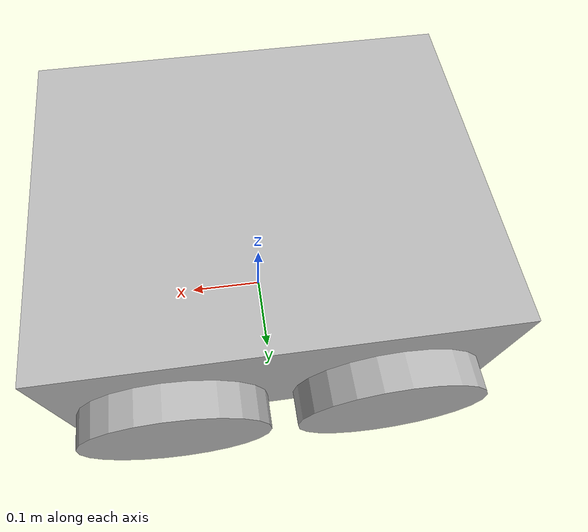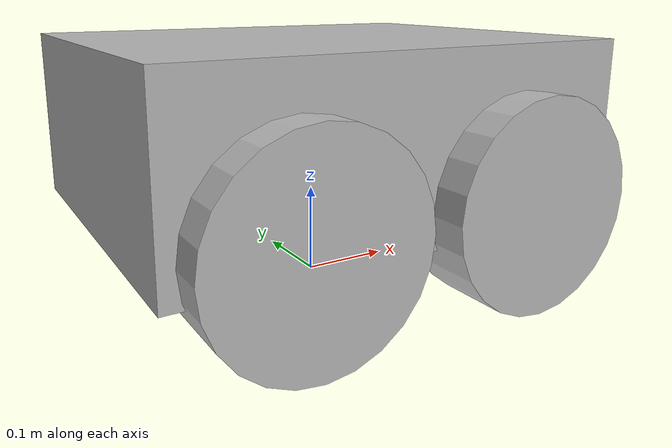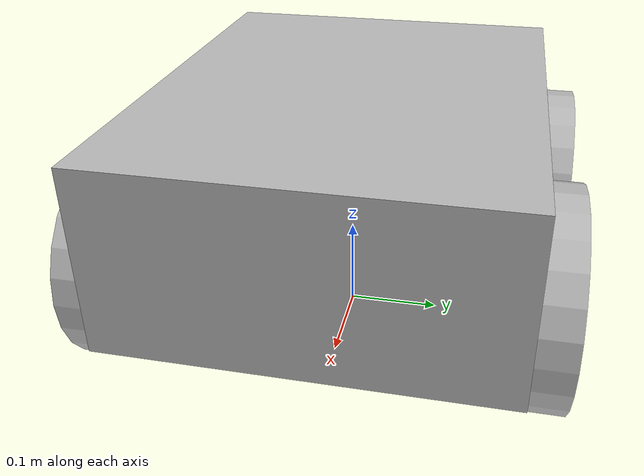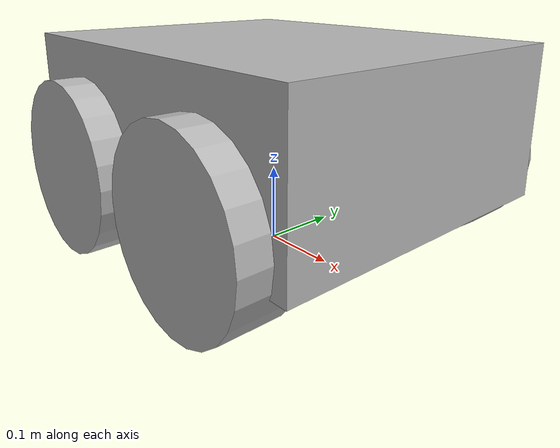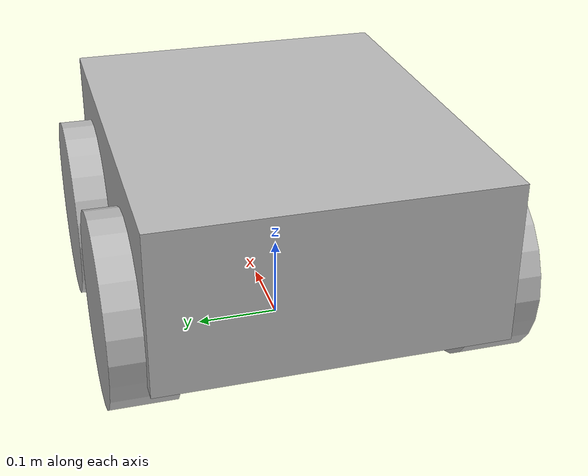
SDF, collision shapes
<?xml version='1.0'?>
<sdf version="1.4">
  <model name="pioneer3at">
    <pose>0 0 0.180 0 0 0</pose>
    <static>false</static>

    <link name="chassis">
      <inertial>
        <mass>14.0</mass>
        <inertia>
          <ixx>0.3338</ixx>
          <ixy>0.0</ixy>
          <ixz>0.0</ixz>
          <iyy>0.4783</iyy>
          <iyz>0.0</iyz>
          <izz>0.3338</izz>
        </inertia>
      </inertial>
      <collision name="collision">
        <geometry>
          <box>
            <size>0.501 0.400 0.19</size>
          </box>
        </geometry>
      </collision>
      <visual name="visual">
        <geometry>
          <mesh>
            <uri>model://pioneer3at/meshes/chassis.dae</uri>
          </mesh>
        </geometry>
      </visual>
    </link>

    <link name="right_front_wheel">
      <pose>0.125 -0.201 -0.06 1.5707 0 0</pose>
      <collision name="collision">
        <geometry>
          <cylinder>
            <radius>0.110</radius>
            <length>0.075</length>
          </cylinder>
        </geometry>
        <surface>
          <friction>
            <ode>
              <mu>1</mu>
              <mu2>1</mu2>
              <slip1>0.5</slip1>
              <slip2>0</slip2>
            </ode>
          </friction>
        </surface>
      </collision>
      <visual name="visual">
        <geometry>
          <mesh>
            <uri>model://pioneer3at/meshes/wheel.dae</uri>
          </mesh>
        </geometry>
      </visual>
    </link>

    <link name="left_front_wheel">
      <pose>0.125 0.201 -0.06 1.5707 0 0</pose>
      <collision name="collision">
        <geometry>
          <cylinder>
            <radius>0.110</radius>
            <length>0.075</length>
          </cylinder>
        </geometry>
        <surface>
          <friction>
            <ode>
              <mu>1</mu>
              <mu2>1</mu2>
              <slip1>0.5</slip1>
              <slip2>0</slip2>
            </ode>
          </friction>
        </surface>
      </collision>
      <visual name="visual">
        <geometry>
          <mesh>
            <uri>model://pioneer3at/meshes/wheel.dae</uri>
          </mesh>
        </geometry>
      </visual>
    </link>

    <link name="right_rear_wheel">
      <pose>-0.125 -0.201 -0.06 1.5707 0 0</pose>
      <collision name="collision">
        <geometry>
          <cylinder>
            <radius>0.110</radius>
            <length>0.075</length>
          </cylinder>
        </geometry>
        <surface>
          <friction>
            <ode>
              <mu>1</mu>
              <mu2>1</mu2>
              <slip1>0.5</slip1>
              <slip2>0</slip2>
            </ode>
          </friction>
        </surface>
      </collision>
      <visual name="visual">
        <geometry>
          <mesh>
            <uri>model://pioneer3at/meshes/wheel.dae</uri>
          </mesh>
        </geometry>
      </visual>
    </link>

    <link name="left_rear_wheel">
      <pose>-0.125 0.201 -0.06 1.5707 0 0</pose>
      <collision name="collision">
        <geometry>
          <cylinder>
            <radius>0.110</radius>
            <length>0.075</length>
          </cylinder>
        </geometry>
        <surface>
          <friction>
            <ode>
              <mu>1</mu>
              <mu2>1</mu2>
              <slip1>0.5</slip1>
              <slip2>0</slip2>
            </ode>
          </friction>
        </surface>
      </collision>
      <visual name="visual">
        <geometry>
          <mesh>
            <uri>model://pioneer3at/meshes/wheel.dae</uri>
          </mesh>
        </geometry>
      </visual>
    </link>

    <joint type="revolute" name="right_front">
      <pose>0 0 0 0 0 0</pose>
      <child>right_front_wheel</child>
      <parent>chassis</parent>
      <axis>
        <xyz>0 1 0</xyz>
      </axis>
    </joint>
    <joint type="revolute" name="right_rear">
      <pose>0 0 0 0 0 0</pose>
      <child>right_rear_wheel</child>
      <parent>chassis</parent>
      <axis>
        <xyz>0 1 0</xyz>
      </axis>
    </joint>
    <joint type="revolute" name="left_front">
      <pose>0 0 0 0 0 0</pose>
      <child>left_front_wheel</child>
      <parent>chassis</parent>
      <axis>
        <xyz>0 1 0</xyz>
      </axis>
    </joint>
    <joint type="revolute" name="left_rear">
      <pose>0 0 0 0 0 0</pose>
      <child>left_rear_wheel</child>
      <parent>chassis</parent>
      <axis>
        <xyz>0 1 0</xyz>
      </axis>
    </joint>

    <plugin name="SkidSteerDrivePlugin" filename="libSkidSteerDrivePlugin.so">
      <right_front>right_front</right_front>
      <right_rear>right_rear</right_rear>
      <left_front>left_front</left_front>
      <left_rear>left_rear</left_rear>
      <MaxForce>5.0</MaxForce>
    </plugin>

    <plugin name='skid_steer_drive_controller' filename='libgazebo_ros_skid_steer_drive.so'>
      <updateRate>100.0</updateRate>
      <robotNamespace>forklift/</robotNamespace>
      <leftFrontJoint>left_front</leftFrontJoint>
      <rightFrontJoint>right_front</rightFrontJoint>
      <leftRearJoint>left_rear</leftRearJoint>
      <rightRearJoint>right_rear</rightRearJoint>
      <wheelSeparation>0.4</wheelSeparation>
      <wheelDiameter>0.215</wheelDiameter>
      <robotBaseFrame>chassis</robotBaseFrame>
      <torque>20</torque>
      <topicName>cmd_vel</topicName>
      <broadcastTF>false</broadcastTF>
    </plugin>

  </model>
</sdf>
